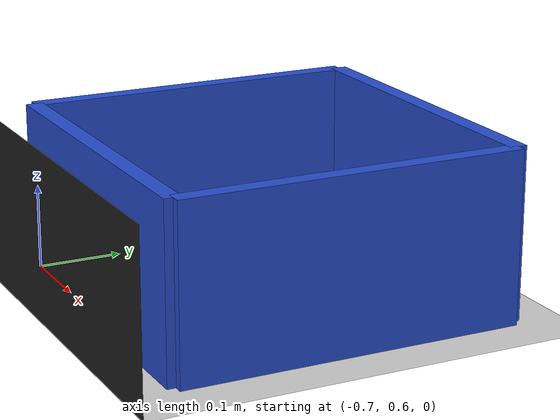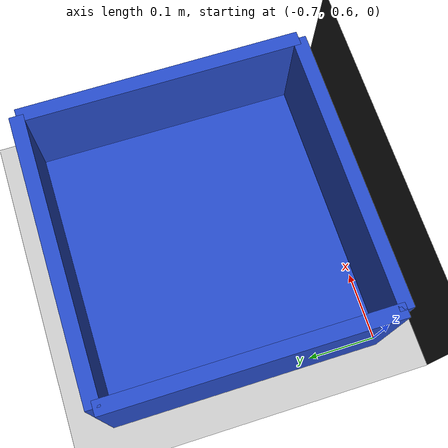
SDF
<sdf version="1.6">
 <world name="default">
  <light name="sun" type="directional">
   <pose>0 0 10 0 -0 0</pose>
   <diffuse>0.8 0.8 0.8 1</diffuse>
   <specular>0.2 0.2 0.2 1</specular>
   <attenuation>
    <range>1000</range>
    <constant>0.9</constant>
    <linear>0.01</linear>
    <quadratic>0.001</quadratic>
   </attenuation>
   <direction>-0.5 0.1 -0.9</direction>
  </light>
  <model name="ground_plane">
   <static>1</static>
   <link name="link">
    <collision name="collision">
     <geometry><plane><normal>0 0 1</normal><size>100 100</size></plane></geometry>
     <surface>
      <contact><collide_bitmask>65535</collide_bitmask></contact>
      <friction><ode><mu>100</mu><mu2>50</mu2></ode></friction>
     </surface>
    </collision>
    <visual name="visual">
     <cast_shadows>0</cast_shadows>
     <geometry><plane><normal>0 0 1</normal><size>100 100</size></plane></geometry>
     <material>
      <script><uri>file://media/materials/scripts/gazebo.material</uri><name>Gazebo/Grey</name></script>
     </material>
    </visual>
   </link>
  </model>
  <gravity>0 0 -9.8</gravity>
  <magnetic_field>6e-06 2.3e-05 -4.2e-05</magnetic_field>
  <atmosphere type="adiabatic"/>
  <physics name="default_physics" default="0" type="ode">
   <max_step_size>0.001</max_step_size>
   <real_time_factor>1</real_time_factor>
   <real_time_update_rate>1000</real_time_update_rate>
  </physics>
  <scene><ambient>0.4 0.4 0.4 1</ambient><background>0.7 0.7 0.7 1</background><shadows>0</shadows></scene>
  <audio><device>default</device></audio>
  <spherical_coordinates>
   <surface_model>EARTH_WGS84</surface_model>
   <latitude_deg>0</latitude_deg>
   <longitude_deg>0</longitude_deg>
   <elevation>0</elevation>
   <heading_deg>0</heading_deg>
  </spherical_coordinates>
  <model name="bin">
   <link name="bottom">
    <inertial>
     <pose>0 0 0.04 0 -0 0</pose>
     <mass>0.25</mass>
     <inertia><ixx>0.0091</ixx><ixy>0</ixy><ixz>0</ixz><iyy>0.0091</iyy><iyz>0</iyz><izz>0.013</izz></inertia>
    </inertial>
    <collision name="bottom_collision">
     <geometry><box><size>0.4 0.4 0.02</size></box></geometry>
     <surface><friction><ode><mu>10</mu><mu2>10</mu2></ode></friction></surface>
    </collision>
    <collision name="bottom_fixed_joint_lump__back_collision_1">
     <pose>0 0.2 0.05 0 -0 0</pose>
     <geometry><box><size>0.4 0.02 0.2</size></box></geometry>
     <surface><friction><ode><mu>10</mu><mu2>10</mu2></ode></friction></surface>
    </collision>
    <collision name="bottom_fixed_joint_lump__front_collision_2">
     <pose>0 -0.2 0.05 0 -0 0</pose>
     <geometry><box><size>0.4 0.02 0.2</size></box></geometry>
     <surface><friction><ode><mu>10</mu><mu2>10</mu2></ode></friction></surface>
    </collision>
    <collision name="bottom_fixed_joint_lump__left_collision_3">
     <pose>-0.2 0 0.05 0 -0 0</pose>
     <geometry><box><size>0.02 0.4 0.2</size></box></geometry>
     <surface><friction><ode><mu>10</mu><mu2>10</mu2></ode></friction></surface>
    </collision>
    <collision name="bottom_fixed_joint_lump__right_collision_4">
     <pose>0.2 0 0.05 0 -0 0</pose>
     <geometry><box><size>0.02 0.4 0.2</size></box></geometry>
     <surface><friction><ode><mu>10</mu><mu2>10</mu2></ode></friction></surface>
    </collision>
    <visual name="bottom_visual">
     <geometry><box><size>0.4 0.4 0.02</size></box></geometry>
     <material>
      <script><name>Gazebo/Blue</name><uri>file://media/materials/scripts/gazebo.material</uri></script>
     </material>
    </visual>
    <visual name="bottom_fixed_joint_lump__back_visual_1">
     <pose>0 0.2 0.05 0 -0 0</pose>
     <geometry><box><size>0.4 0.02 0.2</size></box></geometry>
     <material>
      <script><name>Gazebo/Blue</name><uri>file://media/materials/scripts/gazebo.material</uri></script>
     </material>
    </visual>
    <visual name="bottom_fixed_joint_lump__front_visual_2">
     <pose>0 -0.2 0.05 0 -0 0</pose>
     <geometry><box><size>0.4 0.02 0.2</size></box></geometry>
     <material>
      <script><name>Gazebo/Blue</name><uri>file://media/materials/scripts/gazebo.material</uri></script>
     </material>
    </visual>
    <visual name="bottom_fixed_joint_lump__left_visual_3">
     <pose>-0.2 0 0.05 0 -0 0</pose>
     <geometry><box><size>0.02 0.4 0.2</size></box></geometry>
     <material>
      <script><name>Gazebo/Blue</name><uri>file://media/materials/scripts/gazebo.material</uri></script>
     </material>
    </visual>
    <visual name="bottom_fixed_joint_lump__right_visual_4">
     <pose>0.2 0 0.05 0 -0 0</pose>
     <geometry><box><size>0.02 0.4 0.2</size></box></geometry>
     <material>
      <script><name>Gazebo/Blue</name><uri>file://media/materials/scripts/gazebo.material</uri></script>
     </material>
    </visual>
   </link>
   <joint name="joint_fix" type="fixed"><child>bottom</child><parent>world</parent></joint>
   <pose>-0.5 0.8 0.05 0 -0 0</pose>
  </model>
  <model name="conveyor_belt">
   <link name="base_link">
    <inertial>
     <pose>0 0 0.1 0 -0 0</pose>
     <mass>1</mass>
     <inertia><ixx>1</ixx><ixy>0</ixy><ixz>0</ixz><iyy>1</iyy><iyz>0</iyz><izz>1</izz></inertia>
    </inertial>
    <collision name="base_link_collision">
     <pose>0 0 0.1 0 -0 0</pose>
     <geometry><box><size>5 1 0.2</size></box></geometry>
     <surface><friction><ode><mu>0</mu><mu2>0</mu2></ode></friction></surface>
    </collision>
    <visual name="base_link_visual">
     <pose>0 0 0.1 0 -0 0</pose>
     <geometry><box><size>5 1 0.2</size></box></geometry>
     <material>
      <script><name>Gazebo/FlatBlack</name><uri>file://media/materials/scripts/gazebo.material</uri></script>
     </material>
    </visual>
   </link>
   <joint name="joint_fix" type="fixed"><child>base_link</child><parent>world</parent></joint>
  </model>
 </world>
</sdf>
